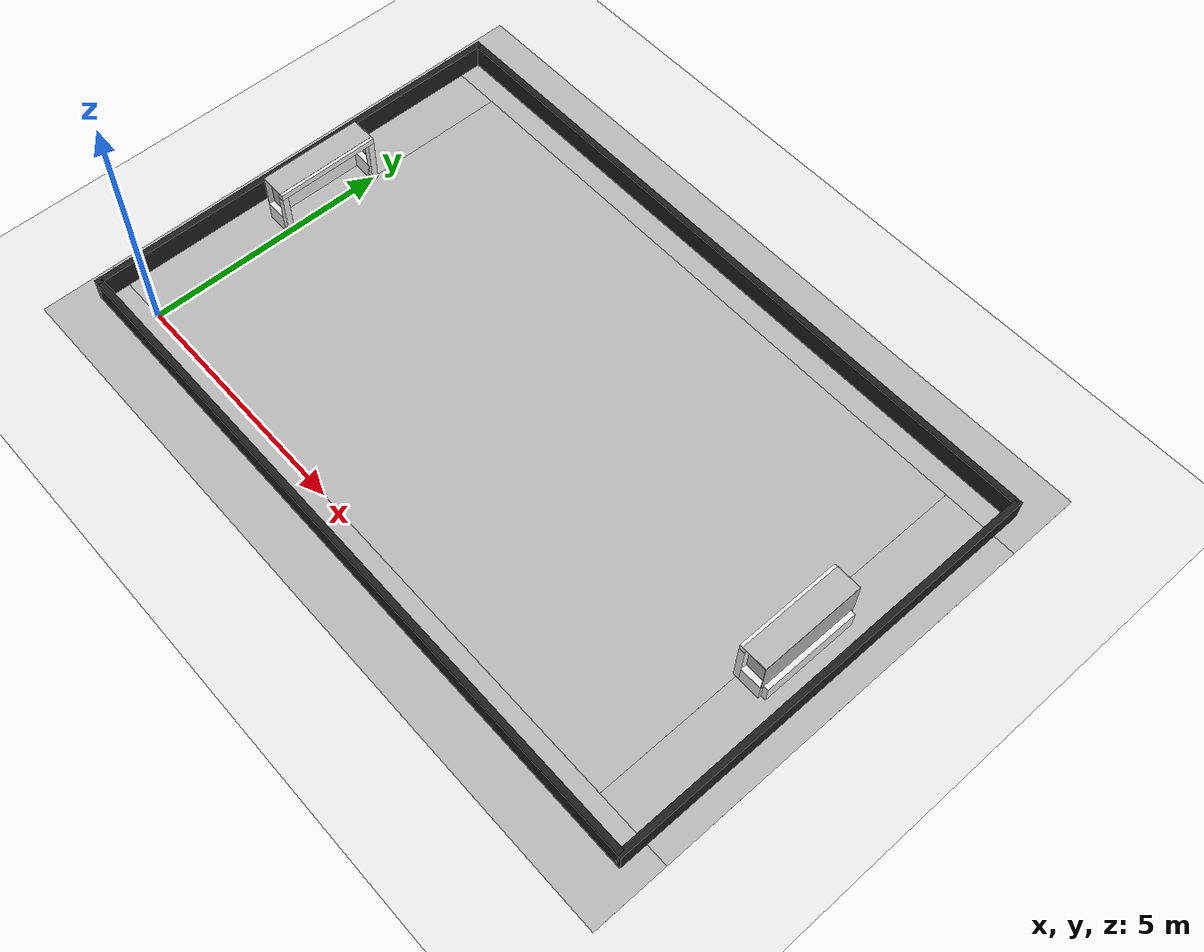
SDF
<sdf version="1.7">
 <world name="KRI_Nasional">
  <scene><ambient>0.4 0.4 0.4 1</ambient><background>0.7 0.7 0.7 1</background><shadows>0</shadows></scene>
  <spherical_coordinates>
   <surface_model>EARTH_WGS84</surface_model>
   <latitude_deg>0</latitude_deg>
   <longitude_deg>0</longitude_deg>
   <elevation>0</elevation>
   <heading_deg>0</heading_deg>
  </spherical_coordinates>
  <model name="ground_plane">
   <static>1</static>
   <link name="link">
    <collision name="collision">
     <geometry><plane><normal>0 0 1</normal><size>100 100</size></plane></geometry>
     <surface><friction><ode><mu>100</mu><mu2>50</mu2></ode></friction></surface>
    </collision>
    <visual name="visual">
     <cast_shadows>0</cast_shadows>
     <geometry><plane><normal>0 0 1</normal><size>100 100</size></plane></geometry>
     <material>
      <script><uri>file://media/materials/scripts/gazebo.material</uri><name>Gazebo/White</name></script>
     </material>
    </visual>
   </link>
  </model>
  <light name="sun" type="directional">
   <pose>0 0 10 0 -0 0</pose>
   <diffuse>0.8 0.8 0.8 1</diffuse>
   <specular>0.2 0.2 0.2 1</specular>
   <attenuation>
    <range>1000</range>
    <constant>0.9</constant>
    <linear>0.01</linear>
    <quadratic>0.001</quadratic>
   </attenuation>
   <direction>-0.5 0.1 -0.9</direction>
   <spot><inner_angle>0</inner_angle><outer_angle>0</outer_angle><falloff>0</falloff></spot>
  </light>
  <physics type="ode">
   <ode>
    <constraints>
     <contact_max_correcting_vel>0.1</contact_max_correcting_vel>
     <contact_surface_layer>0.0001</contact_surface_layer>
     <cfm>0</cfm>
     <erp>0.2</erp>
    </constraints>
    <solver>
     <type>quick</type>
     <iters>50</iters>
     <sor>1.3</sor>
     <use_dynamic_moi_rescaling>0</use_dynamic_moi_rescaling>
    </solver>
   </ode>
   <max_step_size>0.004</max_step_size>
   <real_time_update_rate>100</real_time_update_rate>
   <real_time_factor>1</real_time_factor>
   <gravity>0.0 0.0 -9.81</gravity>
  </physics>
  <model name="KRI">
   <static>1</static>
   <link name="chassis">
    <pose>6 4 0.01 0 -0 0</pose>
    <collision name="collision">
     <geometry><plane><normal>0 0 1</normal><size>12 8</size></plane></geometry>
     <surface><friction><ode><mu>100</mu><mu2>50</mu2></ode></friction></surface>
    </collision>
    <visual name="carpet">
     <geometry><plane><normal>0 0 1</normal><size>12 8</size></plane></geometry>
     <material>
      <script>
       <uri>model://KRI_Nasional/materials/scripts/</uri>
       <uri>model://KRI_Nasional/materials/textures/</uri>
       <name>KRI/Carpet</name>
      </script>
     </material>
    </visual>
    <visual name="base1">
     <pose>0 4.75 0 0 -0 0</pose>
     <cast_shadows>0</cast_shadows>
     <geometry><plane><normal>0 0 1</normal><size>15 1.5</size></plane></geometry>
     <material>
      <script>
       <uri>file://KRI_Nasional/materials/scripts/</uri>
       <uri>file://KRI_Nasional/materials/textures/</uri>
       <name>KRI/FieldBorder</name>
      </script>
      <texture><uri>file://KRI_Nasional/materials/textures/carpet.jpg</uri></texture>
     </material>
    </visual>
    <visual name="base2">
     <pose>0 -4.75 0 0 -0 0</pose>
     <geometry><plane><normal>0 0 1</normal><size>15 1.5</size></plane></geometry>
     <material>
      <script>
       <uri>file://KRI_Nasional/materials/scripts/</uri>
       <uri>file://KRI_Nasional/materials/textures/</uri>
       <name>KRI/FieldBorder</name>
      </script>
     </material>
    </visual>
    <visual name="base3">
     <pose>6.75 0 0 0 -0 0</pose>
     <cast_shadows>0</cast_shadows>
     <geometry><plane><normal>0 0 1</normal><size>1.5 8</size></plane></geometry>
     <material>
      <script>
       <uri>file://KRI_Nasional/materials/scripts/</uri>
       <uri>file://KRI_Nasional/materials/textures/</uri>
       <name>KRI/FieldBorder</name>
      </script>
     </material>
    </visual>
    <visual name="base4">
     <pose>-6.75 0 0 0 -0 0</pose>
     <cast_shadows>0</cast_shadows>
     <geometry><plane><normal>0 0 1</normal><size>1.5 8</size></plane></geometry>
     <material>
      <script>
       <uri>file://KRI_Nasional/materials/scripts/</uri>
       <uri>file://KRI_Nasional/materials/textures/</uri>
       <name>KRI/FieldBorder</name>
      </script>
     </material>
    </visual>
   </link>
   <link name="left_post">
    <pose>0 5 0.5 0 -0 0</pose>
    <collision name="collision"><geometry><box><size>0.125 0.125 1</size></box></geometry></collision>
    <visual name="visual">
     <geometry><box><size>0.125 0.125 1</size></box></geometry>
     <material>
      <script><uri>file://media/materials/scripts/gazebo.material</uri><name>Gazebo/White</name></script>
     </material>
    </visual>
   </link>
   <link name="right_post">
    <pose>0 3 0.5 0 -0 0</pose>
    <collision name="collision"><geometry><box><size>0.125 0.125 1</size></box></geometry></collision>
    <visual name="visual">
     <geometry><box><size>0.125 0.125 1</size></box></geometry>
     <material>
      <script><uri>file://media/materials/scripts/gazebo.material</uri><name>Gazebo/White</name></script>
     </material>
    </visual>
   </link>
   <link name="crossbar">
    <pose>0 4 1.0625 0 -0 0</pose>
    <collision name="collision"><geometry><box><size>0.125 2.125 0.125</size></box></geometry></collision>
    <visual name="visual">
     <geometry><box><size>0.125 2.125 0.125</size></box></geometry>
     <material>
      <script><uri>file://media/materials/scripts/gazebo.material</uri><name>Gazebo/White</name></script>
     </material>
    </visual>
   </link>
   <link name="left_support_horiz_lower">
    <pose>-0.25 5 0.2 0 -0 0</pose>
    <collision name="collision"><geometry><box><size>0.5 0.125 0.4</size></box></geometry></collision>
    <visual name="visual">
     <geometry><box><size>0.5 0.125 0.4</size></box></geometry>
     <material>
      <script><uri>file://media/materials/scripts/gazebo.material</uri><name>Gazebo/White</name></script>
     </material>
    </visual>
   </link>
   <link name="right_support_horiz_lower">
    <pose>-0.25 3 0.2 0 -0 0</pose>
    <collision name="collision"><geometry><box><size>0.5 0.125 0.4</size></box></geometry></collision>
    <visual name="visual">
     <geometry><box><size>0.5 0.125 0.4</size></box></geometry>
     <material>
      <script><uri>file://media/materials/scripts/gazebo.material</uri><name>Gazebo/White</name></script>
     </material>
    </visual>
   </link>
   <link name="center_support_horiz_lower">
    <pose>-0.5 4 0.2 0 -0 0</pose>
    <collision name="collision"><geometry><box><size>0.1 2 0.4</size></box></geometry></collision>
    <visual name="visual">
     <geometry><box><size>0.1 2 0.4</size></box></geometry>
     <material>
      <script><uri>file://media/materials/scripts/gazebo.material</uri><name>Gazebo/White</name></script>
     </material>
    </visual>
   </link>
   <link name="center_net">
    <pose>-0.5 4 0.7625 0 -0 0</pose>
    <collision name="collision"><geometry><box><size>0.01 2.125 0.725</size></box></geometry></collision>
    <visual name="visual">
     <geometry><box><size>0.01 2.125 0.725</size></box></geometry>
     <material>
      <script>
       <uri>file://KRI_Nasional/materials/scripts/</uri>
       <uri>file://KRI_Nasional/materials/textures/</uri>
       <name>KRI/Net</name>
      </script>
     </material>
    </visual>
   </link>
   <link name="left_net">
    <pose>-0.25 5.0625 0.7625 0 -0 0</pose>
    <collision name="collision"><geometry><box><size>0.5 0.01 0.725</size></box></geometry></collision>
    <visual name="visual">
     <geometry><box><size>0.5 0.01 0.725</size></box></geometry>
     <material>
      <script>
       <uri>file://KRI_Nasional/materials/scripts/</uri>
       <uri>file://KRI_Nasional/materials/textures/</uri>
       <name>KRI/Net</name>
      </script>
     </material>
    </visual>
   </link>
   <link name="right_net">
    <pose>-0.25 3.0625 0.7625 0 -0 0</pose>
    <collision name="collision"><geometry><box><size>0.5 0.01 0.725</size></box></geometry></collision>
    <visual name="visual">
     <geometry><box><size>0.5 0.01 0.725</size></box></geometry>
     <material>
      <script>
       <uri>file://KRI_Nasional/materials/scripts/</uri>
       <uri>file://KRI_Nasional/materials/textures/</uri>
       <name>KRI/Net</name>
      </script>
     </material>
    </visual>
   </link>
   <link name="upper_net">
    <pose>-0.25 4 1.125 0 -0 0</pose>
    <collision name="collision"><geometry><box><size>0.5 2.125 0.01</size></box></geometry></collision>
    <visual name="visual">
     <geometry><box><size>0.5 2.125 0.01</size></box></geometry>
     <material>
      <script>
       <uri>file://KRI_Nasional/materials/scripts/</uri>
       <uri>file://KRI_Nasional/materials/textures/</uri>
       <name>KRI/Net</name>
      </script>
     </material>
    </visual>
   </link>
   <link name="left_post_2">
    <pose>12 5 0.5 0 -0 0</pose>
    <collision name="collision"><geometry><box><size>0.125 0.125 1</size></box></geometry></collision>
    <visual name="visual">
     <geometry><box><size>0.125 0.125 1</size></box></geometry>
     <material>
      <script><uri>file://media/materials/scripts/gazebo.material</uri><name>Gazebo/White</name></script>
     </material>
    </visual>
   </link>
   <link name="right_post_2">
    <pose>12 3 0.5 0 -0 0</pose>
    <collision name="collision"><geometry><box><size>0.125 0.125 1</size></box></geometry></collision>
    <visual name="visual">
     <geometry><box><size>0.125 0.125 1</size></box></geometry>
     <material>
      <script><uri>file://media/materials/scripts/gazebo.material</uri><name>Gazebo/White</name></script>
     </material>
    </visual>
   </link>
   <link name="crossbar_2">
    <pose>12 4 1.0625 0 -0 0</pose>
    <collision name="collision"><geometry><box><size>0.125 2.125 0.125</size></box></geometry></collision>
    <visual name="visual">
     <geometry><box><size>0.125 2.125 0.125</size></box></geometry>
     <material>
      <script><uri>file://media/materials/scripts/gazebo.material</uri><name>Gazebo/White</name></script>
     </material>
    </visual>
   </link>
   <link name="left_support_horiz_lower_2">
    <pose>12.25 5 0.2 0 -0 0</pose>
    <collision name="collision"><geometry><box><size>0.5 0.125 0.4</size></box></geometry></collision>
    <visual name="visual">
     <geometry><box><size>0.5 0.125 0.4</size></box></geometry>
     <material>
      <script><uri>file://media/materials/scripts/gazebo.material</uri><name>Gazebo/White</name></script>
     </material>
    </visual>
   </link>
   <link name="right_support_horiz_lower_2">
    <pose>12.25 3 0.2 0 -0 0</pose>
    <collision name="collision"><geometry><box><size>0.5 0.125 0.4</size></box></geometry></collision>
    <visual name="visual">
     <geometry><box><size>0.5 0.125 0.4</size></box></geometry>
     <material>
      <script><uri>file://media/materials/scripts/gazebo.material</uri><name>Gazebo/White</name></script>
     </material>
    </visual>
   </link>
   <link name="center_support_horiz_lower_2">
    <pose>12.55 4 0.2 0 -0 0</pose>
    <collision name="collision"><geometry><box><size>0.1 2 0.4</size></box></geometry></collision>
    <visual name="visual">
     <geometry><box><size>0.1 2 0.4</size></box></geometry>
     <material>
      <script><uri>file://media/materials/scripts/gazebo.material</uri><name>Gazebo/White</name></script>
     </material>
    </visual>
   </link>
   <link name="center_net_2">
    <pose>12.5 4 0.7625 0 -0 0</pose>
    <collision name="collision"><geometry><box><size>0.01 2.125 0.725</size></box></geometry></collision>
    <visual name="visual">
     <geometry><box><size>0.01 2.125 0.725</size></box></geometry>
     <material>
      <script>
       <uri>file://KRI_Nasional/materials/scripts/</uri>
       <uri>file://KRI_Nasional/materials/textures/</uri>
       <name>KRI/Net</name>
      </script>
     </material>
    </visual>
   </link>
   <link name="left_net_2">
    <pose>12.25 5.0625 0.7625 0 -0 0</pose>
    <collision name="collision"><geometry><box><size>0.5 0.01 0.725</size></box></geometry></collision>
    <visual name="visual">
     <geometry><box><size>0.5 0.01 0.725</size></box></geometry>
     <material>
      <script>
       <uri>file://KRI_Nasional/materials/scripts/</uri>
       <uri>file://KRI_Nasional/materials/textures/</uri>
       <name>KRI/Net</name>
      </script>
     </material>
    </visual>
   </link>
   <link name="right_net_2">
    <pose>12.25 3.0625 0.7625 0 -0 0</pose>
    <collision name="collision"><geometry><box><size>0.5 0.01 0.725</size></box></geometry></collision>
    <visual name="visual">
     <geometry><box><size>0.5 0.01 0.725</size></box></geometry>
     <material>
      <script>
       <uri>file://KRI_Nasional/materials/scripts/</uri>
       <uri>file://KRI_Nasional/materials/textures/</uri>
       <name>KRI/Net</name>
      </script>
     </material>
    </visual>
   </link>
   <link name="upper_net_2">
    <pose>12.25 4 1.125 0 -0 0</pose>
    <collision name="collision"><geometry><box><size>0.5 2.125 0.01</size></box></geometry></collision>
    <visual name="visual">
     <geometry><box><size>0.5 2.125 0.01</size></box></geometry>
     <material>
      <script>
       <uri>file://KRI_Nasional/materials/scripts/</uri>
       <uri>file://KRI_Nasional/materials/textures/</uri>
       <name>KRI/Net</name>
      </script>
     </material>
    </visual>
   </link>
   <link name="border_left_y">
    <pose>6 8.5 0 0 -0 0</pose>
    <collision name="collision"><geometry><box><size>14 0.125 1</size></box></geometry></collision>
    <visual name="visual">
     <geometry><box><size>14 0.125 1</size></box></geometry>
     <material>
      <script><uri>file://media/materials/scripts/gazebo.material</uri><name>Gazebo/Black</name></script>
     </material>
    </visual>
   </link>
   <link name="border_right_y">
    <pose>6 -0.5 0 0 -0 0</pose>
    <collision name="collision"><geometry><box><size>14 0.125 1</size></box></geometry></collision>
    <visual name="visual">
     <geometry><box><size>14 0.125 1</size></box></geometry>
     <material>
      <script><uri>file://media/materials/scripts/gazebo.material</uri><name>Gazebo/Black</name></script>
     </material>
    </visual>
   </link>
   <link name="border_left_x">
    <pose>-1 4 0 0 -0 0</pose>
    <collision name="collision"><geometry><box><size>0.125 9.125 1</size></box></geometry></collision>
    <visual name="visual">
     <geometry><box><size>0.125 9.125 1</size></box></geometry>
     <material>
      <script><uri>file://media/materials/scripts/gazebo.material</uri><name>Gazebo/Black</name></script>
     </material>
    </visual>
   </link>
   <link name="border_right_x">
    <pose>13 4 0 0 -0 0</pose>
    <collision name="collision"><geometry><box><size>0.125 9.125 1</size></box></geometry></collision>
    <visual name="visual">
     <geometry><box><size>0.125 9.125 1</size></box></geometry>
     <material>
      <script><uri>file://media/materials/scripts/gazebo.material</uri><name>Gazebo/Black</name></script>
     </material>
    </visual>
   </link>
   <link name="kamera">
    <pose>0 -11 12 0 0.9 1.568</pose>
    <sensor name="camera" type="camera">
     <camera>
      <image><width>1280</width><height>720</height><format>R8G8B8</format></image>
      <horizontal_fov>1.05</horizontal_fov>
      <clip><near>0.1</near><far>100</far></clip>
      <near>0.55</near>
      <far>2.5</far>
     </camera>
     <plugin name="camera_controller" filename="libgazebo_ros_camera.so">
      <alwaysOn>1</alwaysOn>
      <updateRate>50.0</updateRate>
      <cameraName>gazebo</cameraName>
      <imageTopicName>image_raw</imageTopicName>
      <cameraInfoTopicName>camera_info</cameraInfoTopicName>
      <frameName>camera</frameName>
      <hackBaseline>0.07</hackBaseline>
      <distortionK1>0.0</distortionK1>
      <distortionK2>0.0</distortionK2>
      <distortionK3>0.0</distortionK3>
      <distortionT1>0.0</distortionT1>
      <distortionT2>0.0</distortionT2>
     </plugin>
    </sensor>
   </link>
  </model>
  <plugin name="referee" filename="libreferee.so"/>
  <plugin name="gazebo_ros_state" filename="libgazebo_ros_state.so">
   <plugin name="gazebo_ros_model_state" filename="libgazebo_ros_api_plugin.so"/>
   <ros><namespace>/gazebo</namespace></ros>
  </plugin>
  <gravity>0 0 -9.8</gravity>
  <magnetic_field>6e-06 2.3e-05 -4.2e-05</magnetic_field>
  <atmosphere type="adiabatic"/>
  <audio><device>default</device></audio>
 </world>
</sdf>
